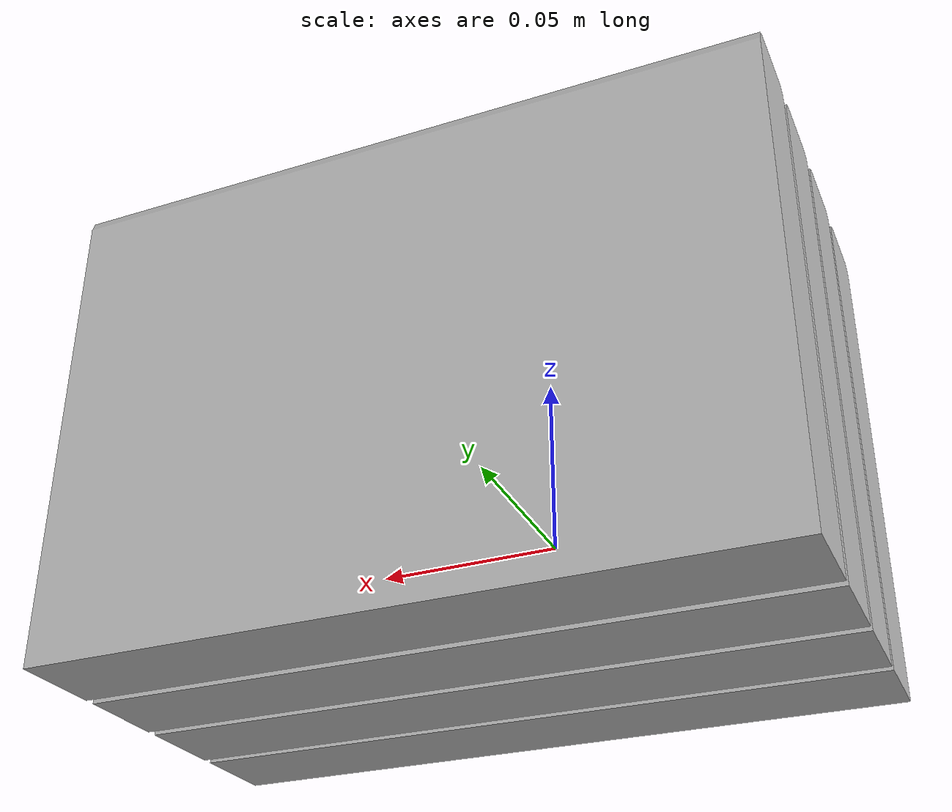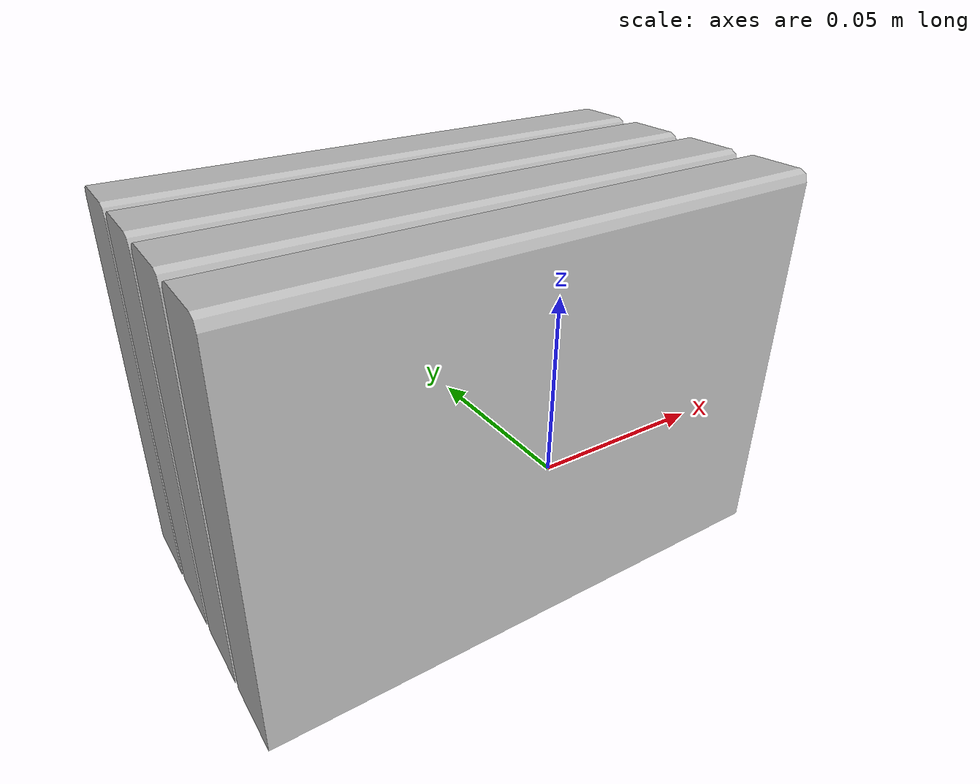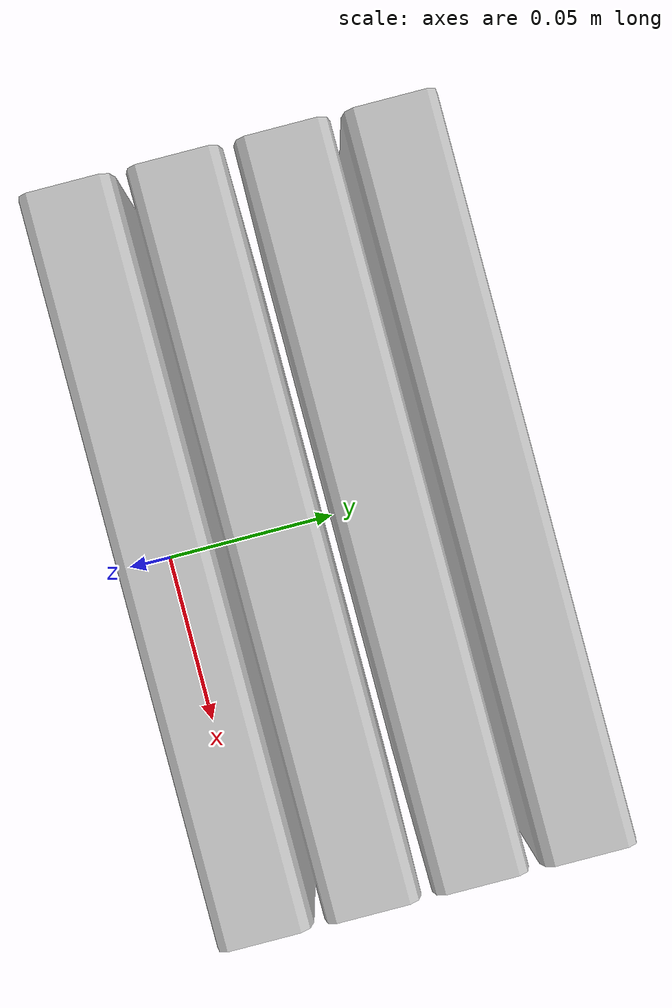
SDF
<?xml version="1.0" ?>
<sdf version="1.4">
  <model name="shelf2_book2_h5">
    <link name="body">
      <pose>0 0 0 0 0 0</pose>
      <inertial>
        <pose>   0.001143   0.048329   0.005935 0 0 0</pose>
        <mass>0.5</mass>
        <inertia>
          <ixx>0.01</ixx>
          <ixy>0</ixy>
          <ixz>0</ixz>
          <iyy>0.01</iyy>
          <iyz>0</iyz>
          <izz>0.01</izz>
        </inertia>
      </inertial>
      <collision name="collision">
        <geometry>
          <mesh>
            <uri>model://bookshelf/shelf2_items/book2_h5/book2_h5.dae</uri>
          </mesh>
        </geometry>
      </collision>
      <visual name="visual">
        <geometry>
          <mesh>
            <uri>model://bookshelf/shelf2_items/book2_h5/book2_h5.dae</uri>
          </mesh>
        </geometry>
      </visual>
    </link>
  </model>
</sdf>
